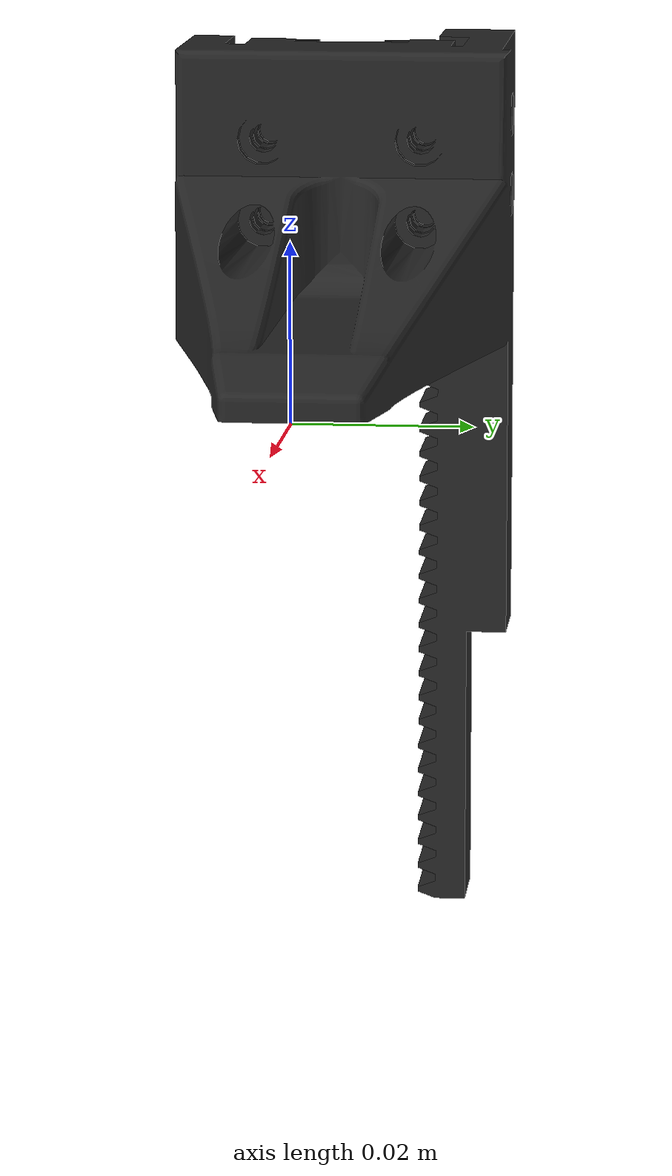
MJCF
<mujoco model="gripper_1">
  <default>
    <default class="visual">
      <geom group="2" type="mesh" contype="0" conaffinity="0"/>
    </default>
    <default class="collision">
      <geom group="3" type="mesh"/>
    </default>
  </default>
  <asset>
    <material name="black_shell.001" specular="0.5" shininess="0.0" rgba="0.150000 0.150000 0.150000 1.000000"/>
    <mesh file="gripper_1.obj"/>
    <mesh file="gripper_1_collision_0.obj"/>
    <mesh file="gripper_1_collision_1.obj"/>
  </asset>
  <worldbody>
    <body name="gripper_1">
      <geom material="black_shell.001" mesh="gripper_1" class="visual"/>
      <geom mesh="gripper_1_collision_0" rgba="0.17408741357602098 0.8496024528568492 0.7591276246806586 1" class="collision"/>
      <geom mesh="gripper_1_collision_1" rgba="0.9680199420605576 0.5305883955488184 0.13985898305173128 1" class="collision"/>
    </body>
  </worldbody>
</mujoco>
